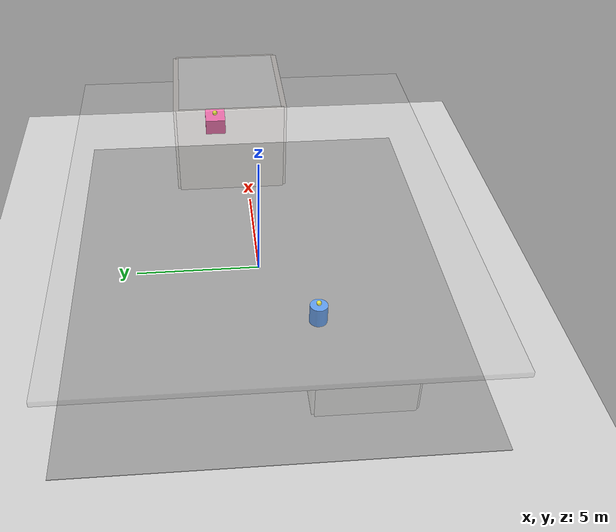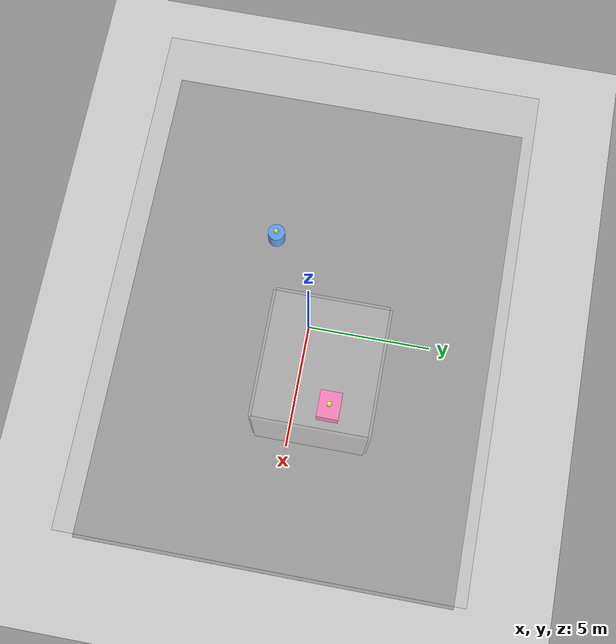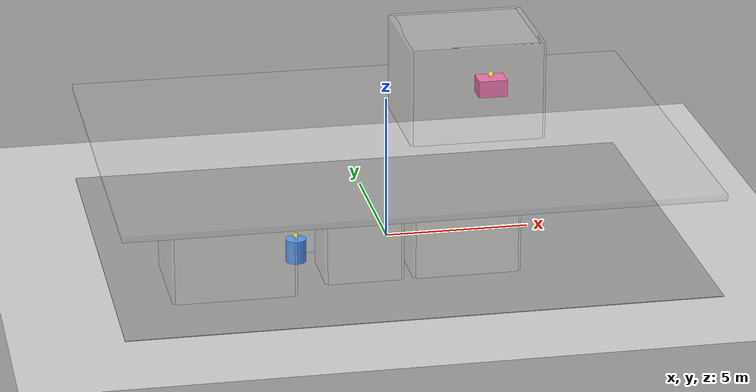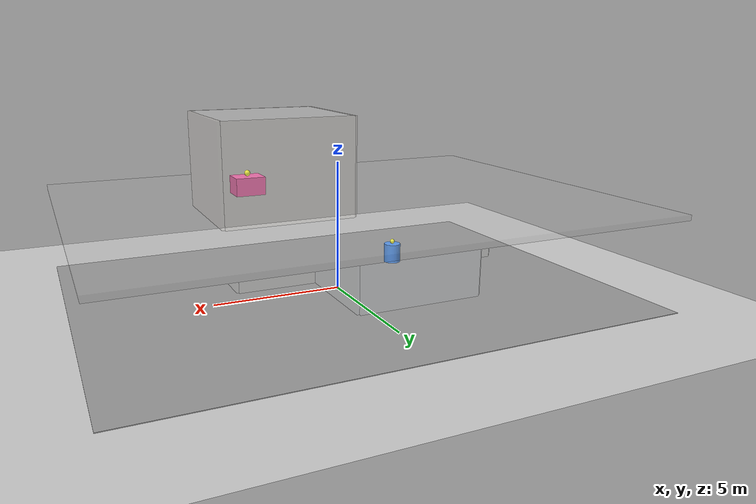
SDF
<?xml version="1.0"?>
<sdf version="1.8">
  <world name="phase3_ifc_digital_twin">

    <!-- Ground plane -->
    <model name="ground_plane">
      <static>true</static>
      <link name="link">
        <collision name="collision">
          <geometry>
            <plane>
              <normal>0 0 1</normal>
              <size>100 100</size>
            </plane>
          </geometry>
        </collision>
        <visual name="visual">
          <geometry>
            <plane>
              <normal>0 0 1</normal>
              <size>100 100</size>
            </plane>
          </geometry>
          <material>
            <ambient>0.8 0.8 0.8 1</ambient>
            <diffuse>0.8 0.8 0.8 1</diffuse>
          </material>
        </visual>
      </link>
    </model>

    <!-- Building Foundation -->
    <model name="foundation">
      <static>true</static>
      <pose>0 0 -0.5 0 0 0</pose>
      <link name="foundation_link">
        <visual name="foundation_visual">
          <geometry>
            <box>
              <size>20 15 1</size>
            </box>
          </geometry>
          <material>
            <ambient>0.5 0.5 0.5 1</ambient>
            <diffuse>0.6 0.6 0.6 1</diffuse>
          </material>
        </visual>
      </link>
    </model>

    <!-- BEDROOM_01 (First Bedroom from IFC) -->
    <model name="bedroom_01">
      <static>true</static>
      <pose>-6 -3 0 0 0 0</pose>
      <link name="bedroom_link">
        <visual name="floor">
          <pose>0 0 0.05 0 0 0</pose>
          <geometry>
            <box>
              <size>4 3.5 0.1</size>
            </box>
          </geometry>
          <material>
            <ambient>0.8 0.7 0.6 0.3</ambient>
            <diffuse>0.9 0.8 0.7 0.3</diffuse>
          </material>
        </visual>
        <visual name="wall_north">
          <pose>0 1.75 1.5 0 0 0</pose>
          <geometry>
            <box>
              <size>4 0.2 3</size>
            </box>
          </geometry>
          <material>
            <ambient>0.9 0.9 0.85 0.2</ambient>
            <diffuse>0.95 0.95 0.9 0.2</diffuse>
          </material>
        </visual>
        <visual name="wall_south">
          <pose>0 -1.75 1.5 0 0 0</pose>
          <geometry>
            <box>
              <size>4 0.2 3</size>
            </box>
          </geometry>
          <material>
            <ambient>0.9 0.9 0.85 0.2</ambient>
            <diffuse>0.95 0.95 0.9 0.2</diffuse>
          </material>
        </visual>
        <visual name="wall_east">
          <pose>2 0 1.5 0 0 0</pose>
          <geometry>
            <box>
              <size>0.2 3.5 3</size>
            </box>
          </geometry>
          <material>
            <ambient>0.9 0.9 0.85 0.2</ambient>
            <diffuse>0.95 0.95 0.9 0.2</diffuse>
          </material>
        </visual>
        <visual name="wall_west">
          <pose>-2 0 1.5 0 0 0</pose>
          <geometry>
            <box>
              <size>0.2 3.5 3</size>
            </box>
          </geometry>
          <material>
            <ambient>0.9 0.9 0.85 0.2</ambient>
            <diffuse>0.95 0.95 0.9 0.2</diffuse>
          </material>
        </visual>
        <visual name="ceiling">
          <pose>0 0 2.95 0 0 0</pose>
          <geometry>
            <box>
              <size>4 3.5 0.1</size>
            </box>
          </geometry>
          <material>
            <ambient>0.95 0.95 0.95 0.2</ambient>
            <diffuse>0.98 0.98 0.98 0.2</diffuse>
          </material>
        </visual>
      </link>
    </model>

    <!-- BEDROOM_02 (Second Bedroom from IFC) -->
    <model name="bedroom_02">
      <static>true</static>
      <pose>-1.5 -3 0 0 0 0</pose>
      <link name="bedroom2_link">
        <visual name="floor">
          <pose>0 0 0.05 0 0 0</pose>
          <geometry>
            <box>
              <size>2.5 2 0.1</size>
            </box>
          </geometry>
          <material>
            <ambient>0.8 0.7 0.6 0.3</ambient>
            <diffuse>0.9 0.8 0.7 0.3</diffuse>
          </material>
        </visual>
        <visual name="wall_north">
          <pose>0 1 1.5 0 0 0</pose>
          <geometry>
            <box>
              <size>2.5 0.2 3</size>
            </box>
          </geometry>
          <material>
            <ambient>0.9 0.9 0.85 0.2</ambient>
            <diffuse>0.95 0.95 0.9 0.2</diffuse>
          </material>
        </visual>
        <visual name="wall_south">
          <pose>0 -1 1.5 0 0 0</pose>
          <geometry>
            <box>
              <size>2.5 0.2 3</size>
            </box>
          </geometry>
          <material>
            <ambient>0.9 0.9 0.85 0.2</ambient>
            <diffuse>0.95 0.95 0.9 0.2</diffuse>
          </material>
        </visual>
        <visual name="wall_east">
          <pose>1.25 0 1.5 0 0 0</pose>
          <geometry>
            <box>
              <size>0.2 2 3</size>
            </box>
          </geometry>
          <material>
            <ambient>0.9 0.9 0.85 0.2</ambient>
            <diffuse>0.95 0.95 0.9 0.2</diffuse>
          </material>
        </visual>
        <visual name="wall_west">
          <pose>-1.25 0 1.5 0 0 0</pose>
          <geometry>
            <box>
              <size>0.2 2 3</size>
            </box>
          </geometry>
          <material>
            <ambient>0.9 0.9 0.85 0.2</ambient>
            <diffuse>0.95 0.95 0.9 0.2</diffuse>
          </material>
        </visual>
        <visual name="ceiling">
          <pose>0 0 2.95 0 0 0</pose>
          <geometry>
            <box>
              <size>2.5 2 0.1</size>
            </box>
          </geometry>
          <material>
            <ambient>0.95 0.95 0.95 0.2</ambient>
            <diffuse>0.98 0.98 0.98 0.2</diffuse>
          </material>
        </visual>
      </link>
    </model>

    <!-- KITCHEN -->
    <model name="kitchen">
      <static>true</static>
      <pose>2 -2.5 0 0 0 0</pose>
      <link name="kitchen_link">
        <visual name="floor">
          <pose>0 0 0.05 0 0 0</pose>
          <geometry>
            <box>
              <size>3.5 3 0.1</size>
            </box>
          </geometry>
          <material>
            <ambient>0.9 0.8 0.7 0.3</ambient>
            <diffuse>0.95 0.85 0.8 0.3</diffuse>
          </material>
        </visual>
        <visual name="wall_north">
          <pose>0 1.5 1.5 0 0 0</pose>
          <geometry>
            <box>
              <size>3.5 0.2 3</size>
            </box>
          </geometry>
          <material>
            <ambient>0.95 0.95 0.9 0.2</ambient>
            <diffuse>0.98 0.98 0.95 0.2</diffuse>
          </material>
        </visual>
        <visual name="wall_south">
          <pose>0 -1.5 1.5 0 0 0</pose>
          <geometry>
            <box>
              <size>3.5 0.2 3</size>
            </box>
          </geometry>
          <material>
            <ambient>0.95 0.95 0.9 0.2</ambient>
            <diffuse>0.98 0.98 0.95 0.2</diffuse>
          </material>
        </visual>
        <visual name="wall_east">
          <pose>1.75 0 1.5 0 0 0</pose>
          <geometry>
            <box>
              <size>0.2 3 3</size>
            </box>
          </geometry>
          <material>
            <ambient>0.95 0.95 0.9 0.2</ambient>
            <diffuse>0.98 0.98 0.95 0.2</diffuse>
          </material>
        </visual>
        <visual name="wall_west">
          <pose>-1.75 0 1.5 0 0 0</pose>
          <geometry>
            <box>
              <size>0.2 3 3</size>
            </box>
          </geometry>
          <material>
            <ambient>0.95 0.95 0.9 0.2</ambient>
            <diffuse>0.98 0.98 0.95 0.2</diffuse>
          </material>
        </visual>
        <visual name="ceiling">
          <pose>0 0 2.95 0 0 0</pose>
          <geometry>
            <box>
              <size>3.5 3 0.1</size>
            </box>
          </geometry>
          <material>
            <ambient>0.95 0.95 0.95 0.2</ambient>
            <diffuse>0.98 0.98 0.98 0.2</diffuse>
          </material>
        </visual>
      </link>
    </model>

    <!-- BATHROOM -->
    <model name="bathroom">
      <static>true</static>
      <pose>-2 1 0 0 0 0</pose>
      <link name="bathroom_link">
        <visual name="floor">
          <pose>0 0 0.05 0 0 0</pose>
          <geometry>
            <box>
              <size>5 4 0.1</size>
            </box>
          </geometry>
          <material>
            <ambient>0.9 0.9 1 0.3</ambient>
            <diffuse>0.95 0.95 1 0.3</diffuse>
          </material>
        </visual>
        <visual name="wall_north">
          <pose>0 2 1.5 0 0 0</pose>
          <geometry>
            <box>
              <size>5 0.2 3</size>
            </box>
          </geometry>
          <material>
            <ambient>0.9 0.95 1 0.2</ambient>
            <diffuse>0.95 0.98 1 0.2</diffuse>
          </material>
        </visual>
        <visual name="wall_south">
          <pose>0 -2 1.5 0 0 0</pose>
          <geometry>
            <box>
              <size>5 0.2 3</size>
            </box>
          </geometry>
          <material>
            <ambient>0.9 0.95 1 0.2</ambient>
            <diffuse>0.95 0.98 1 0.2</diffuse>
          </material>
        </visual>
        <visual name="wall_east">
          <pose>2.5 0 1.5 0 0 0</pose>
          <geometry>
            <box>
              <size>0.2 4 3</size>
            </box>
          </geometry>
          <material>
            <ambient>0.9 0.95 1 0.2</ambient>
            <diffuse>0.95 0.98 1 0.2</diffuse>
          </material>
        </visual>
        <visual name="wall_west">
          <pose>-2.5 0 1.5 0 0 0</pose>
          <geometry>
            <box>
              <size>0.2 4 3</size>
            </box>
          </geometry>
          <material>
            <ambient>0.9 0.95 1 0.2</ambient>
            <diffuse>0.95 0.98 1 0.2</diffuse>
          </material>
        </visual>
        <visual name="ceiling">
          <pose>0 0 2.95 0 0 0</pose>
          <geometry>
            <box>
              <size>5 4 0.1</size>
            </box>
          </geometry>
          <material>
            <ambient>0.95 0.95 0.95 0.2</ambient>
            <diffuse>0.98 0.98 0.98 0.2</diffuse>
          </material>
        </visual>
      </link>
    </model>

    <!-- UPPER FLOOR SLAB (Transparent) -->
    <model name="upper_floor_slab">
      <static>true</static>
      <pose>0 0 3.5 0 0 0</pose>
      <link name="slab_link">
        <visual name="slab_visual">
          <geometry>
            <box>
              <size>20 15 0.2</size>
            </box>
          </geometry>
          <material>
            <ambient>0.6 0.6 0.6 0.2</ambient>
            <diffuse>0.7 0.7 0.7 0.2</diffuse>
          </material>
        </visual>
      </link>
    </model>

    <!-- LOUNGE (Upper Floor) -->
    <model name="lounge">
      <static>true</static>
      <pose>3 1 3.5 0 0 0</pose>
      <link name="lounge_link">
        <visual name="floor">
          <pose>0 0 0.05 0 0 0</pose>
          <geometry>
            <box>
              <size>4.5 4 0.1</size>
            </box>
          </geometry>
          <material>
            <ambient>0.9 0.8 0.7 0.3</ambient>
            <diffuse>0.95 0.85 0.8 0.3</diffuse>
          </material>
        </visual>
        <visual name="wall_north">
          <pose>0 2 1.75 0 0 0</pose>
          <geometry>
            <box>
              <size>4.5 0.2 3.5</size>
            </box>
          </geometry>
          <material>
            <ambient>0.9 0.85 0.8 0.2</ambient>
            <diffuse>0.95 0.9 0.85 0.2</diffuse>
          </material>
        </visual>
        <visual name="wall_south">
          <pose>0 -2 1.75 0 0 0</pose>
          <geometry>
            <box>
              <size>4.5 0.2 3.5</size>
            </box>
          </geometry>
          <material>
            <ambient>0.9 0.85 0.8 0.2</ambient>
            <diffuse>0.95 0.9 0.85 0.2</diffuse>
          </material>
        </visual>
        <visual name="wall_east">
          <pose>2.25 0 1.75 0 0 0</pose>
          <geometry>
            <box>
              <size>0.2 4 3.5</size>
            </box>
          </geometry>
          <material>
            <ambient>0.9 0.85 0.8 0.2</ambient>
            <diffuse>0.95 0.9 0.85 0.2</diffuse>
          </material>
        </visual>
        <visual name="wall_west">
          <pose>-2.25 0 1.75 0 0 0</pose>
          <geometry>
            <box>
              <size>0.2 4 3.5</size>
            </box>
          </geometry>
          <material>
            <ambient>0.9 0.85 0.8 0.2</ambient>
            <diffuse>0.95 0.9 0.85 0.2</diffuse>
          </material>
        </visual>
        <visual name="ceiling">
          <pose>0 0 3.45 0 0 0</pose>
          <geometry>
            <box>
              <size>4.5 4 0.1</size>
            </box>
          </geometry>
          <material>
            <ambient>0.95 0.95 0.95 0.2</ambient>
            <diffuse>0.98 0.98 0.98 0.2</diffuse>
          </material>
        </visual>
      </link>
    </model>

    <!-- MOVING ROBOT 1: Ground Floor Specialist (NON-STATIC) -->
    <model name="azure_construction_robot_01">
      <pose>-3.5 -2 0.5 0 0 0</pose>
      <link name="base_link">
        <inertial>
          <mass>50.0</mass>
          <inertia>
            <ixx>2.0</ixx>
            <iyy>2.0</iyy>
            <izz>2.0</izz>
          </inertia>
        </inertial>
        <collision name="collision">
          <geometry>
            <cylinder>
              <radius>0.35</radius>
              <length>0.8</length>
            </cylinder>
          </geometry>
        </collision>
        <visual name="robot_body">
          <geometry>
            <cylinder>
              <radius>0.35</radius>
              <length>0.8</length>
            </cylinder>
          </geometry>
          <material>
            <ambient>0.2 0.5 1.0 1</ambient>
            <diffuse>0.3 0.6 1.0 1</diffuse>
          </material>
        </visual>
        <visual name="azure_marker">
          <pose>0 0 0.5 0 0 0</pose>
          <geometry>
            <sphere>
              <radius>0.1</radius>
            </sphere>
          </geometry>
          <material>
            <ambient>1 1 0 1</ambient>
            <diffuse>1 1 0.2 1</diffuse>
          </material>
        </visual>
      </link>
    </model>

    <!-- MOVING ROBOT 2: Upper Floor Specialist (NON-STATIC) -->
    <model name="azure_construction_robot_02">
      <pose>4.0 1.5 4.7 0 0 0</pose>
      <link name="base_link">
        <inertial>
          <mass>60.0</mass>
          <inertia>
            <ixx>3.0</ixx>
            <iyy>3.0</iyy>
            <izz>3.0</izz>
          </inertia>
        </inertial>
        <collision name="collision">
          <geometry>
            <box>
              <size>1.0 0.8 0.6</size>
            </box>
          </geometry>
        </collision>
        <visual name="robot_body">
          <geometry>
            <box>
              <size>1.0 0.8 0.6</size>
            </box>
          </geometry>
          <material>
            <ambient>1.0 0.3 0.6 1</ambient>
            <diffuse>1.0 0.4 0.7 1</diffuse>
          </material>
        </visual>
        <visual name="azure_marker">
          <pose>0 0 0.4 0 0 0</pose>
          <geometry>
            <sphere>
              <radius>0.1</radius>
            </sphere>
          </geometry>
          <material>
            <ambient>1 1 0 1</ambient>
            <diffuse>1 1 0.2 1</diffuse>
          </material>
        </visual>
      </link>
    </model>

    <!-- LIGHTING -->
    <light name="sun" type="directional">
      <cast_shadows>true</cast_shadows>
      <pose>0 0 10 0 0 0</pose>
      <diffuse>0.8 0.8 0.8 1</diffuse>
      <specular>0.2 0.2 0.2 1</specular>
      <direction>-0.5 0.1 -0.9</direction>
    </light>

    <light name="ground_floor_light" type="point">
      <pose>0 0 2.5 0 0 0</pose>
      <diffuse>1 0.95 0.8 1</diffuse>
      <attenuation>
        <range>15</range>
        <linear>0.05</linear>
        <constant>0.1</constant>
        <quadratic>0.005</quadratic>
      </attenuation>
    </light>

    <light name="upper_floor_light" type="point">
      <pose>0 0 6.5 0 0 0</pose>
      <diffuse>1 1 0.9 1</diffuse>
      <attenuation>
        <range>15</range>
        <linear>0.05</linear>
        <constant>0.1</constant>
        <quadratic>0.005</quadratic>
      </attenuation>
    </light>

    <!-- PHYSICS -->
    <physics name="default_physics" default="0" type="ode">
      <gravity>0 0 -9.8066</gravity>
      <ode>
        <solver>
          <type>quick</type>
          <iters>150</iters>
          <sor>1.400000</sor>
        </solver>
        <constraints>
          <cfm>0.00001</cfm>
          <erp>0.2</erp>
          <contact_max_correcting_vel>2000.000000</contact_max_correcting_vel>
          <contact_surface_layer>0.01000</contact_surface_layer>
        </constraints>
      </ode>
      <max_step_size>0.004</max_step_size>
      <real_time_factor>1.000000</real_time_factor>
      <real_time_update_rate>250.000000</real_time_update_rate>
    </physics>
  </world>
</sdf>
